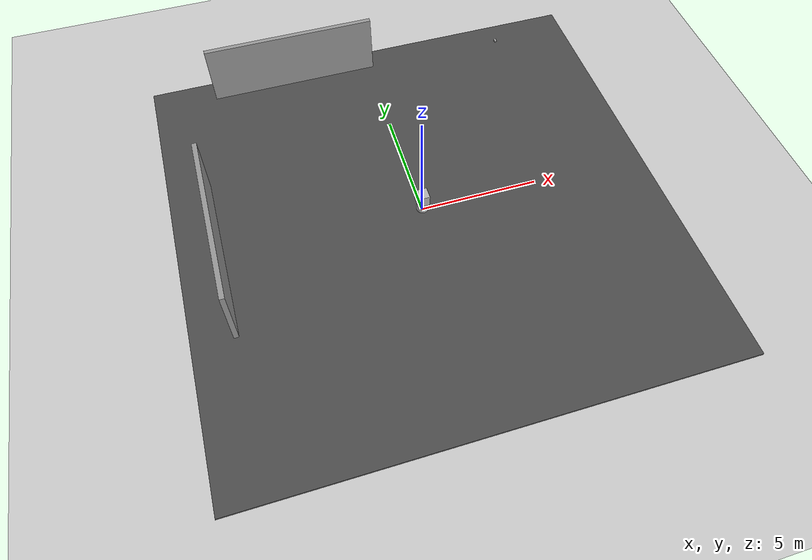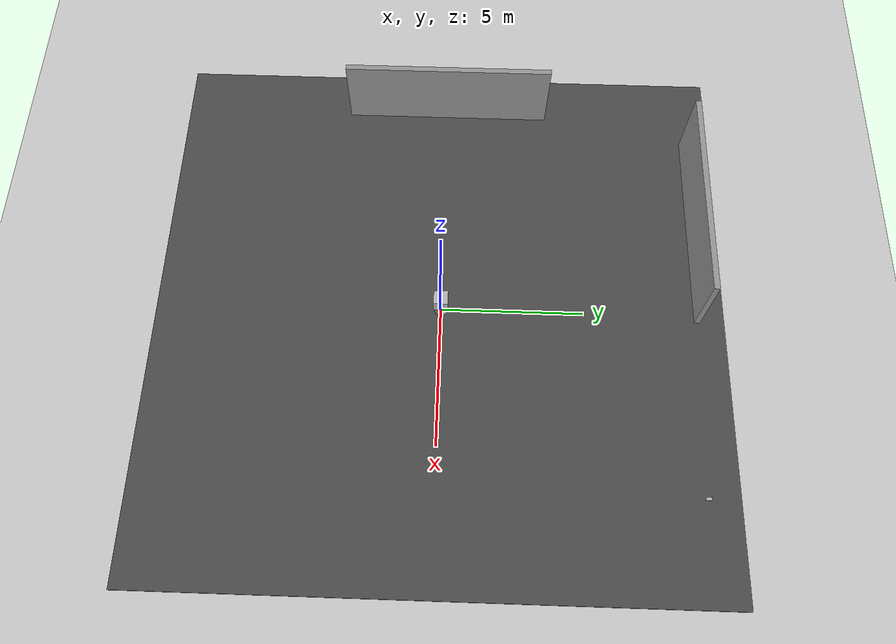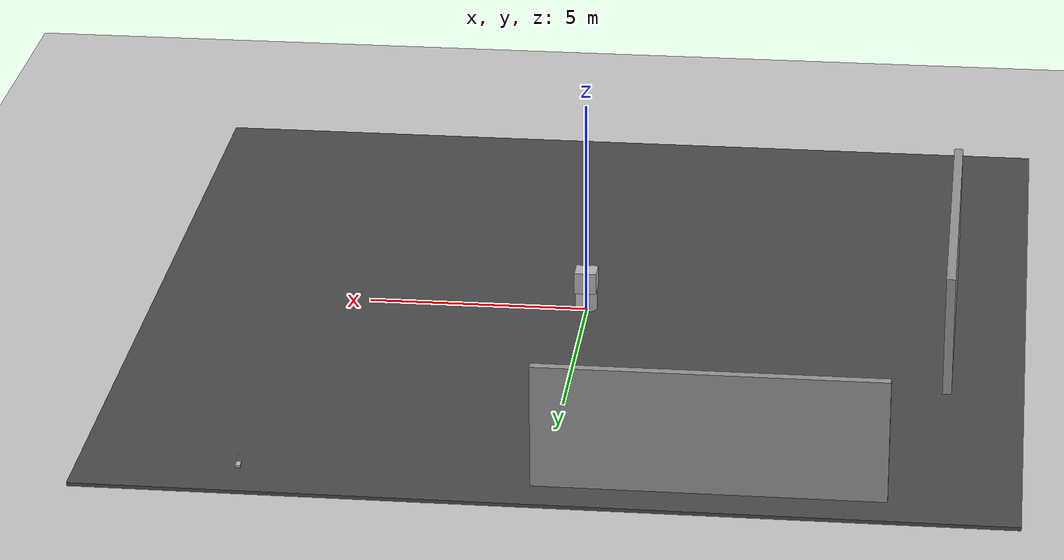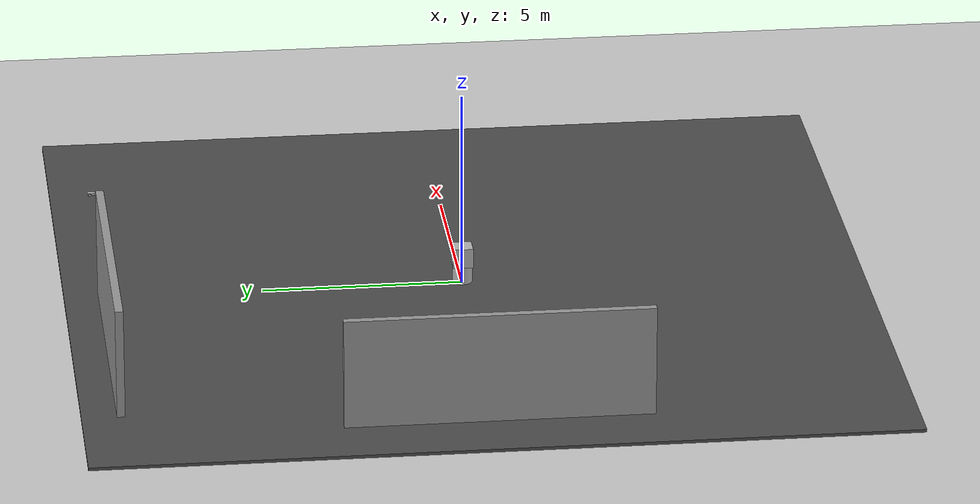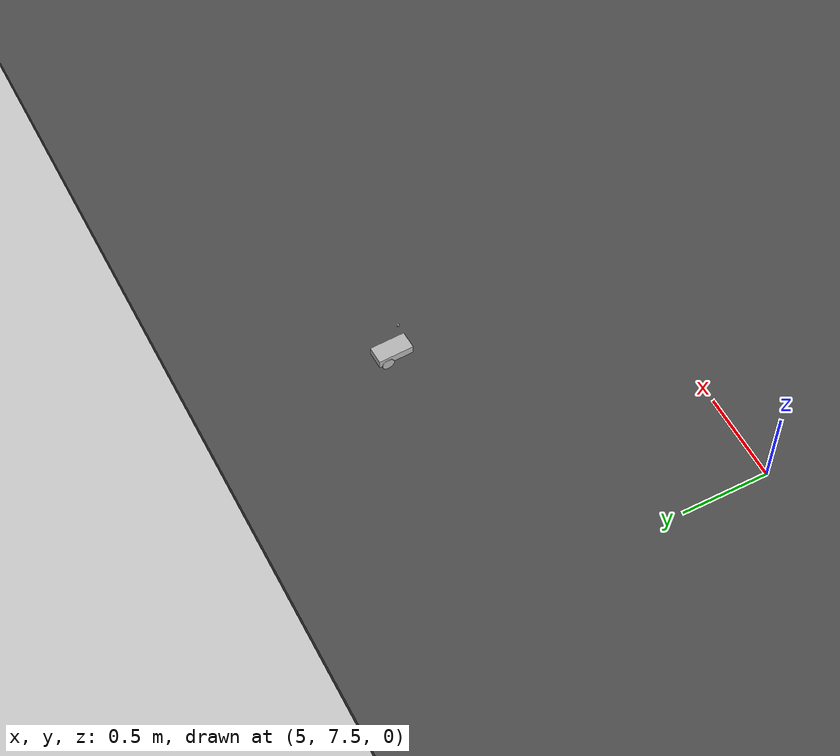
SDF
<sdf version="1.7">
 <world name="default">
  <light name="sun" type="directional">
   <pose>0 0 10 0 -0 0</pose>
   <diffuse>0.8 0.8 0.8 1</diffuse>
   <specular>0.2 0.2 0.2 1</specular>
   <attenuation>
    <range>1000</range>
    <constant>0.9</constant>
    <linear>0.01</linear>
    <quadratic>0.001</quadratic>
   </attenuation>
   <direction>-0.5 0.1 -0.9</direction>
   <spot><inner_angle>0</inner_angle><outer_angle>0</outer_angle><falloff>0</falloff></spot>
  </light>
  <model name="ground_plane">
   <static>1</static>
   <link name="link">
    <collision name="collision">
     <geometry><plane><normal>0 0 1</normal><size>100 100</size></plane></geometry>
     <surface>
      <contact><collide_bitmask>65535</collide_bitmask></contact>
      <friction><ode><mu>100</mu><mu2>50</mu2></ode></friction>
     </surface>
    </collision>
    <visual name="visual">
     <cast_shadows>0</cast_shadows>
     <geometry><plane><normal>0 0 1</normal><size>100 100</size></plane></geometry>
     <material>
      <script><uri>file://media/materials/scripts/gazebo.material</uri><name>Gazebo/Grey</name></script>
     </material>
    </visual>
   </link>
  </model>
  <model name="light_model">
   <static>1</static>
   <link name="cylinder">
    <pose>0 0 0.25 0 -0 0</pose>
    <collision name="collision">
     <geometry><cylinder><radius>0.25</radius><length>0.5</length></cylinder></geometry>
    </collision>
    <visual name="visual">
     <geometry><cylinder><radius>0.25</radius><length>0.5</length></cylinder></geometry>
    </visual>
    <light name="light_source1" type="spot">
     <pose>0.25 0 0.25 0 -0.7854 0</pose>
     <attenuation><range>30</range><linear>0.05</linear></attenuation>
     <diffuse>1 0 0 1</diffuse>
     <specular>1 0 0 1</specular>
     <spot><inner_angle>0.3</inner_angle><outer_angle>0.35</outer_angle><falloff>1</falloff></spot>
     <direction>0 0 -1</direction>
    </light>
    <light name="light_source2" type="spot">
     <pose>-0.25 0 0.25 0 0.7854 0</pose>
     <attenuation><range>30</range><linear>0.05</linear></attenuation>
     <diffuse>0 1 0 1</diffuse>
     <specular>0 1 0 1</specular>
     <spot><inner_angle>0.3</inner_angle><outer_angle>0.35</outer_angle><falloff>1</falloff></spot>
     <direction>0 0 -1</direction>
    </light>
   </link>
   <link name="box">
    <pose>0 0 0.75 0 -0 0</pose>
    <collision name="collision"><geometry><box><size>0.5 0.5 0.5</size></box></geometry></collision>
    <visual name="visual"><geometry><box><size>0.5 0.5 0.5</size></box></geometry></visual>
    <light name="light_source3" type="spot">
     <pose>0 0.25 0.25 0.7854 -0 0</pose>
     <attenuation><range>30</range><linear>0.05</linear></attenuation>
     <diffuse>0 0 1 1</diffuse>
     <specular>0 0 1 1</specular>
     <spot><inner_angle>0.3</inner_angle><outer_angle>0.35</outer_angle><falloff>1</falloff></spot>
     <direction>0 0 -1</direction>
    </light>
    <light name="light_source4" type="spot">
     <pose>0 -0.25 0.25 -0.7854 0 0</pose>
     <attenuation><range>30</range><linear>0.05</linear></attenuation>
     <diffuse>1 1 0 1</diffuse>
     <specular>1 1 0 1</specular>
     <spot><inner_angle>0.3</inner_angle><outer_angle>0.35</outer_angle><falloff>1</falloff></spot>
     <direction>0 0 -1</direction>
    </light>
   </link>
   <joint name="joint" type="fixed"><parent>cylinder</parent><child>box</child></joint>
   <plugin name="light_control" filename="libFlashLightPlugin.so">
    <lightName>light_sensor</lightName>
    <lightTopicName>light_raw</lightTopicName>
    <lightInfoTopicName>light_info</lightInfoTopicName>
    <enable>true</enable>
    <light><id>cylinder/light_source1</id><duration>0.1</duration><interval>0.4</interval></light>
    <light>
     <id>cylinder/light_source2</id>
     <duration>0.05</duration>
     <interval>0.05</interval>
     <color>0.5 1 0.8</color>
    </light>
    <light>
     <id>box/light_source3</id>
     <duration>1.0</duration>
     <interval>0.1</interval>
     <enable>false</enable>
    </light>
    <light>
     <id>box/light_source4</id>
     <block><duration>0.5</duration><interval>0.0</interval><color>1 1 0</color></block>
     <block><duration>0.5</duration><interval>0.0</interval><color>0 1 1</color></block>
     <block><duration>0.5</duration><interval>0.0</interval><color>1 0 1</color></block>
     <enable>true</enable>
    </light>
   </plugin>
  </model>
  <model name="asphalt_plane">
   <pose>-0.038886 -0.047086 0 0 -0 0</pose>
   <static>1</static>
   <link name="link">
    <collision name="collision"><geometry><box><size>20 20 0.1</size></box></geometry></collision>
    <visual name="visual">
     <cast_shadows>0</cast_shadows>
     <geometry><box><size>20 20 0.1</size></box></geometry>
     <material>
      <script>
       <uri>model://asphalt_plane/materials/scripts</uri>
       <uri>model://asphalt_plane/materials/textures</uri>
       <name>vrc/asphalt</name>
      </script>
     </material>
    </visual>
   </link>
  </model>
  <physics name="default_physics" default="0" type="ode">
   <ode>
    <solver>
     <type>quick</type>
     <iters>10</iters>
     <sor>1.3</sor>
     <use_dynamic_moi_rescaling>0</use_dynamic_moi_rescaling>
    </solver>
    <constraints>
     <cfm>0</cfm>
     <erp>0.2</erp>
     <contact_max_correcting_vel>100</contact_max_correcting_vel>
     <contact_surface_layer>0.001</contact_surface_layer>
    </constraints>
   </ode>
   <max_step_size>0.002</max_step_size>
   <real_time_factor>1</real_time_factor>
   <real_time_update_rate>500</real_time_update_rate>
  </physics>
  <model name="pallet 5 multi boxes">
   <pose>0.334986 3.33764 1.63184 0 0 -1.57575</pose>
   <static>1</static>
   <self_collide>1</self_collide>
  </model>
  <model name="pallet 17 multi boxes">
   <pose>0.334986 3.33764 2.31 0 0 -1.57575</pose>
   <static>1</static>
   <self_collide>1</self_collide>
  </model>
  <model name="pallet 6 multi boxes">
   <pose>-2.18966 3.35192 3.27046 0 0 -1.58092</pose>
   <static>1</static>
   <self_collide>1</self_collide>
  </model>
  <model name="pallet 15 multi boxes">
   <pose>-4.68966 3.35192 3.27046 0 0 -1.58092</pose>
   <static>1</static>
   <self_collide>1</self_collide>
  </model>
  <model name="pallet 16 multi boxes">
   <pose>-5.88966 3.35192 3.27046 0 0 -1.58092</pose>
   <static>1</static>
   <self_collide>1</self_collide>
  </model>
  <model name="grey_wall">
   <static>1</static>
   <link name="link">
    <pose>0 0 1.4 0 -0 0</pose>
    <collision name="collision"><geometry><box><size>7.5 0.2 2.8</size></box></geometry></collision>
    <visual name="visual">
     <cast_shadows>0</cast_shadows>
     <geometry><box><size>7.5 0.2 2.8</size></box></geometry>
     <material>
      <script>
       <uri>model://grey_wall/materials/scripts</uri>
       <uri>model://grey_wall/materials/textures</uri>
       <name>vrc/grey_wall</name>
      </script>
     </material>
    </visual>
   </link>
   <pose>-8.34545 0 0 0 0 -1.57</pose>
  </model>
  <model name="grey_wall2">
   <static>1</static>
   <link name="link">
    <pose>0 0 1.4 0 -0 0</pose>
    <collision name="collision"><geometry><box><size>7.5 0.2 2.8</size></box></geometry></collision>
    <visual name="visual">
     <cast_shadows>0</cast_shadows>
     <geometry><box><size>7.5 0.2 2.8</size></box></geometry>
     <material>
      <script>
       <uri>model://grey_wall/materials/scripts</uri>
       <uri>model://grey_wall/materials/textures</uri>
       <name>vrc/grey_wall</name>
      </script>
     </material>
    </visual>
   </link>
   <pose>-3.5 9 0 0 -0 0</pose>
  </model>
  <model name="yolobot">
   <link name="base_link">
    <inertial>
     <pose>0 0 -0.025 0 -0 0</pose>
     <mass>1</mass>
     <inertia>
      <ixx>0.000333333</ixx>
      <ixy>0</ixy>
      <ixz>0</ixz>
      <iyy>0.000333333</iyy>
      <iyz>0</iyz>
      <izz>0.000333333</izz>
     </inertia>
    </inertial>
    <collision name="base_link_fixed_joint_lump__collision_chassis_collision">
     <geometry><box><size>0.2 0.1 0.05</size></box></geometry>
    </collision>
    <visual name="base_link_fixed_joint_lump__visual_chassis_visual">
     <geometry><box><size>0.2 0.1 0.05</size></box></geometry>
    </visual>
    <visual name="base_link_fixed_joint_lump__rgb_cam_camera_link_visual_1">
     <pose>0.04 0 0.2 0 -0 0</pose>
     <geometry><box><size>0.01 0.01 0.01</size></box></geometry>
    </visual>
    <sensor name="rgb_cam" type="camera">
     <always_on>1</always_on>
     <update_rate>10</update_rate>
     <camera name="rgb_cam">
      <horizontal_fov>1.39626</horizontal_fov>
      <image><width>640</width><height>480</height><format>R8G8B8</format></image>
      <clip><near>0.005</near><far>20</far></clip>
     </camera>
     <plugin name="camera_controller" filename="libgazebo_ros_camera.so">
      <alwaysOn>1</alwaysOn>
      <updateRate>0.0</updateRate>
      <cameraName>rgb_cam</cameraName>
      <imageTopicName>image_raw</imageTopicName>
      <cameraInfoTopicName>camera_info</cameraInfoTopicName>
      <frameName>rgb_cam_camera_link_frame</frameName>
      <hackBaseline>0.07</hackBaseline>
      <distortionK1>0.0</distortionK1>
      <distortionK2>0.0</distortionK2>
      <distortionK3>0.0</distortionK3>
      <distortionT1>0.0</distortionT1>
      <distortionT2>0.0</distortionT2>
     </plugin>
     <pose>0.05 0 0.2 0 -0 0</pose>
    </sensor>
   </link>
   <joint name="front_yaw_joint" type="revolute">
    <pose relative_to="base_link">0.08 0 -0.05 0 -0 0</pose>
    <parent>base_link</parent>
    <child>front_yaw_link</child>
    <axis>
     <xyz>0 0 1</xyz>
     <limit><effort>1000</effort><velocity>100</velocity><lower>-1e+16</lower><upper>1e+16</upper></limit>
     <dynamics>
      <damping>0</damping>
      <friction>0.1</friction>
      <spring_reference>0</spring_reference>
      <spring_stiffness>0</spring_stiffness>
     </dynamics>
    </axis>
   </joint>
   <link name="front_yaw_link">
    <pose relative_to="front_yaw_joint">0 0 0 0 -0 0</pose>
    <inertial>
     <pose>0 0 0 -0 1.5707 1.5707</pose>
     <mass>0.001</mass>
     <inertia>
      <ixx>5.14583e-09</ixx>
      <ixy>0</ixy>
      <ixz>0</ixz>
      <iyy>5.14583e-09</iyy>
      <iyz>0</iyz>
      <izz>1.0125e-08</izz>
     </inertia>
    </inertial>
    <collision name="front_yaw_link_fixed_joint_lump__link_right_wheel_collision_collision">
     <pose>0 0 0 1.57089 1.57079 -3.14159</pose>
     <geometry><cylinder><length>0.001</length><radius>0.0045</radius></cylinder></geometry>
    </collision>
   </link>
   <joint name="front_roll_joint" type="revolute">
    <pose relative_to="front_yaw_link">0 0 0 0 -0 0</pose>
    <parent>front_yaw_link</parent>
    <child>front_roll_link</child>
    <axis>
     <xyz>1 0 0</xyz>
     <limit><effort>1000</effort><velocity>100</velocity><lower>-1e+16</lower><upper>1e+16</upper></limit>
     <dynamics>
      <damping>0</damping>
      <friction>0.1</friction>
      <spring_reference>0</spring_reference>
      <spring_stiffness>0</spring_stiffness>
     </dynamics>
    </axis>
   </joint>
   <link name="front_roll_link">
    <pose relative_to="front_roll_joint">0 0 0 0 -0 0</pose>
    <inertial>
     <pose>0 0 0 -0 1.5707 1.5707</pose>
     <mass>0.001</mass>
     <inertia>
      <ixx>5.14583e-09</ixx>
      <ixy>0</ixy>
      <ixz>0</ixz>
      <iyy>5.14583e-09</iyy>
      <iyz>0</iyz>
      <izz>1.0125e-08</izz>
     </inertia>
    </inertial>
    <collision name="front_roll_link_fixed_joint_lump__link_right_wheel_collision_collision">
     <pose>0 0 0 1.57089 1.57079 -3.14159</pose>
     <geometry><cylinder><length>0.001</length><radius>0.0045</radius></cylinder></geometry>
    </collision>
   </link>
   <joint name="front_pitch_joint" type="revolute">
    <pose relative_to="front_roll_link">0 0 0 0 -0 0</pose>
    <parent>front_roll_link</parent>
    <child>front_pitch_link</child>
    <axis>
     <xyz>0 1 0</xyz>
     <limit><effort>1000</effort><velocity>100</velocity><lower>-1e+16</lower><upper>1e+16</upper></limit>
     <dynamics>
      <damping>0</damping>
      <friction>0.1</friction>
      <spring_reference>0</spring_reference>
      <spring_stiffness>0</spring_stiffness>
     </dynamics>
    </axis>
   </joint>
   <link name="front_pitch_link">
    <pose relative_to="front_pitch_joint">0 0 0 0 -0 0</pose>
    <inertial>
     <pose>0 0 0 -0 1.5707 1.5707</pose>
     <mass>0.001</mass>
     <inertia><ixx>4e-08</ixx><ixy>0</ixy><ixz>0</ixz><iyy>4e-08</iyy><iyz>0</iyz><izz>4e-08</izz></inertia>
    </inertial>
    <collision name="front_pitch_link_fixed_joint_lump__front_collision_collision">
     <pose>0 0 0 1.57089 1.57079 -3.14159</pose>
     <geometry><sphere><radius>0.01</radius></sphere></geometry>
    </collision>
    <visual name="front_pitch_link_fixed_joint_lump__front_visual_visual">
     <pose>0 0 0 1.57089 1.57079 -3.14159</pose>
     <geometry><sphere><radius>0.01</radius></sphere></geometry>
    </visual>
   </link>
   <joint name="joint_left_wheel" type="revolute">
    <pose relative_to="base_link">-0.05 -0.05 -0.025 0 -0 0</pose>
    <parent>base_link</parent>
    <child>left_wheel</child>
    <axis>
     <xyz>0 1 0</xyz>
     <limit><effort>10000</effort><velocity>1000</velocity><lower>-1e+16</lower><upper>1e+16</upper></limit>
     <dynamics><spring_reference>0</spring_reference><spring_stiffness>0</spring_stiffness></dynamics>
    </axis>
   </joint>
   <link name="left_wheel">
    <pose relative_to="joint_left_wheel">0 0 0 0 -0 0</pose>
    <inertial>
     <pose>0 0 0 -0 1.5707 1.5707</pose>
     <mass>0.2</mass>
     <inertia>
      <ixx>3.12667e-05</ixx>
      <ixy>0</ixy>
      <ixz>0</ixz>
      <iyy>3.12667e-05</iyy>
      <iyz>0</iyz>
      <izz>6.25e-05</izz>
     </inertia>
    </inertial>
    <collision name="left_wheel_fixed_joint_lump__link_right_wheel_collision_collision">
     <pose>0 0 0 1.57089 1.57079 -3.14159</pose>
     <geometry><cylinder><length>0.01</length><radius>0.035</radius></cylinder></geometry>
    </collision>
    <visual name="left_wheel_fixed_joint_lump__link_right_wheel_visual_visual">
     <pose>0 0 0 1.57089 1.57079 -3.14159</pose>
     <geometry><cylinder><length>0.01</length><radius>0.035</radius></cylinder></geometry>
    </visual>
   </link>
   <joint name="joint_right_wheel" type="revolute">
    <pose relative_to="base_link">-0.05 0.05 -0.025 0 -0 0</pose>
    <parent>base_link</parent>
    <child>right_wheel</child>
    <axis>
     <xyz>0 1 0</xyz>
     <limit><effort>10000</effort><velocity>1000</velocity><lower>-1e+16</lower><upper>1e+16</upper></limit>
     <dynamics><spring_reference>0</spring_reference><spring_stiffness>0</spring_stiffness></dynamics>
    </axis>
   </joint>
   <link name="right_wheel">
    <pose relative_to="joint_right_wheel">0 0 0 0 -0 0</pose>
    <inertial>
     <pose>0 0 0 -0 1.5707 1.5707</pose>
     <mass>0.2</mass>
     <inertia>
      <ixx>3.12667e-05</ixx>
      <ixy>0</ixy>
      <ixz>0</ixz>
      <iyy>3.12667e-05</iyy>
      <iyz>0</iyz>
      <izz>6.25e-05</izz>
     </inertia>
    </inertial>
    <collision name="right_wheel_fixed_joint_lump__link_right_wheel_collision_collision">
     <pose>0 0 0 1.57089 1.57079 -3.14159</pose>
     <geometry><cylinder><length>0.01</length><radius>0.035</radius></cylinder></geometry>
    </collision>
    <visual name="right_wheel_fixed_joint_lump__link_right_wheel_visual_visual">
     <pose>0 0 0 1.57089 1.57079 -3.14159</pose>
     <geometry><cylinder><length>0.01</length><radius>0.035</radius></cylinder></geometry>
    </visual>
   </link>
   <plugin name="gazebo_ros_control" filename="libgazebo_ros_control.so">
    <robotNamespace>/yolobot</robotNamespace>
    <robotParam>/robot_description</robotParam>
    <robotSimType>gazebo_ros_control/DefaultRobotHWSim</robotSimType>
   </plugin>
   <plugin name="differential_drive_controller" filename="libgazebo_ros_diff_drive.so">
    <ros><namespace>/yolobot</namespace></ros>
    <left_joint>joint_right_wheel</left_joint>
    <right_joint>joint_left_wheel</right_joint>
    <wheel_separation>0.1</wheel_separation>
    <wheel_diameter>0.025</wheel_diameter>
    <max_wheel_torque>0.1</max_wheel_torque>
    <max_wheel_acceleration>1.0</max_wheel_acceleration>
    <publish_odom>1</publish_odom>
    <publish_odom_tf>1</publish_odom_tf>
    <odometry_frame>odom</odometry_frame>
    <robot_base_frame>chassis</robot_base_frame>
   </plugin>
   <static>0</static>
   <plugin name="gazebo_ros_imu_controller" filename="libgazebo_ros_imu.so">
    <robotNamespace>/yolobot/</robotNamespace>
    <topicName>imu/data3</topicName>
    <serviceName>imu/service</serviceName>
    <gaussianNoise>0</gaussianNoise>
    <rpyOffsets>0 0 0</rpyOffsets>
    <updateRate>50.0</updateRate>
    <alwaysOn>1</alwaysOn>
    <gaussianNoise>0</gaussianNoise>
    <bodyName>base_link</bodyName>
    <xyzOffset>0 0 0</xyzOffset>
    <rpyOffset>0 -0 0</rpyOffset>
   </plugin>
   <pose>6.48902 8.87192 0.11322 0.015233 -0.007071 -1.53513</pose>
  </model>
  <gravity>0 0 -9.8066</gravity>
  <magnetic_field>6e-06 2.3e-05 -4.2e-05</magnetic_field>
  <atmosphere type="adiabatic"/>
  <scene><ambient>0.4 0.4 0.4 1</ambient><background>0.7 0.7 0.7 1</background><shadows>1</shadows></scene>
  <audio><device>default</device></audio>
  <spherical_coordinates>
   <surface_model>EARTH_WGS84</surface_model>
   <latitude_deg>0</latitude_deg>
   <longitude_deg>0</longitude_deg>
   <elevation>0</elevation>
   <heading_deg>0</heading_deg>
  </spherical_coordinates>
  <light name="user_point_light_0" type="point">
   <pose>7.15041 -7.83054 1 0 -0 0</pose>
   <diffuse>0.5 0.5 0.5 1</diffuse>
   <specular>0.1 0.1 0.1 1</specular>
   <attenuation>
    <range>20</range>
    <constant>0.5</constant>
    <linear>0.01</linear>
    <quadratic>0.001</quadratic>
   </attenuation>
   <cast_shadows>0</cast_shadows>
   <direction>0 0 -1</direction>
   <spot><inner_angle>0</inner_angle><outer_angle>0</outer_angle><falloff>0</falloff></spot>
  </light>
  <light name="user_point_light_1" type="point">
   <pose>-5.74181 2.72462 1 0 -0 0</pose>
   <diffuse>0.5 0.5 0.5 1</diffuse>
   <specular>0.1 0.1 0.1 1</specular>
   <attenuation>
    <range>20</range>
    <constant>0.5</constant>
    <linear>0.01</linear>
    <quadratic>0.001</quadratic>
   </attenuation>
   <cast_shadows>0</cast_shadows>
   <direction>0 0 -1</direction>
  </light>
 </world>
</sdf>
